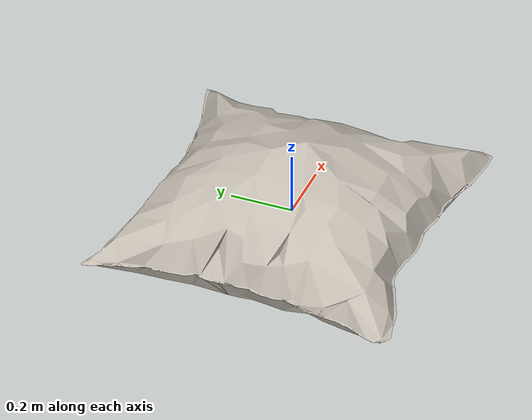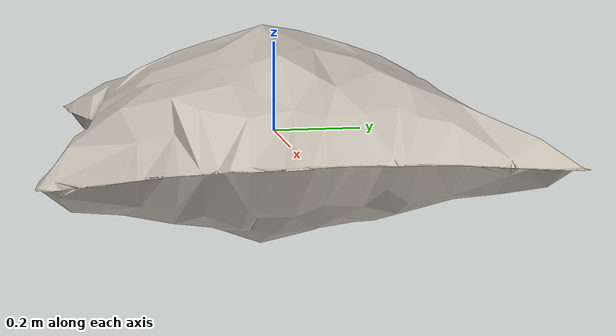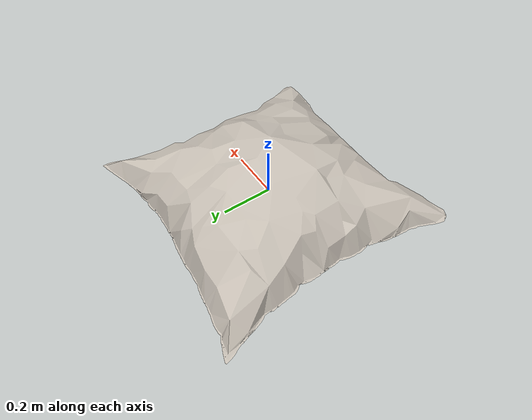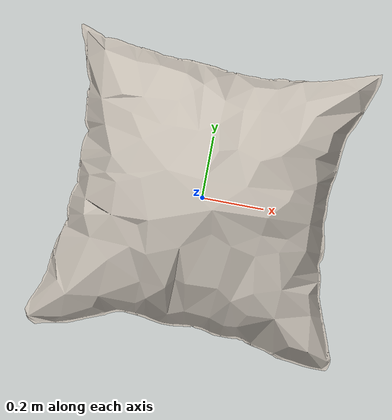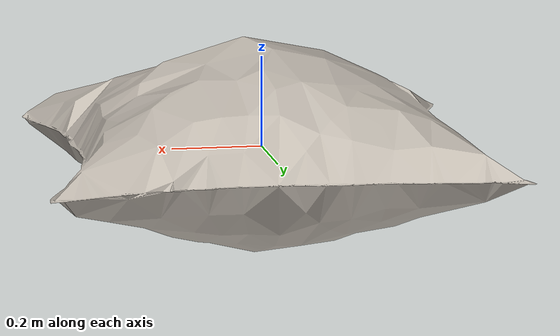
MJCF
<mujoco model="floor_cushion">
  <asset>
  <texture file="visual/ceramic.png" name="tex-floor_cushion" type="2d" />
  <material name="floor_cushion" reflectance="0.5" texrepeat="1 1" texture="tex-floor_cushion" texuniform="false" />
  <mesh file="visual/model_normalized_0.obj" name="model_normalized_0_vis" scale="1.0 1.0 1.0" /><mesh file="collision/model_normalized_collision_22.obj" name="model_normalized_collision_22._coll" scale="1.0 1.0 1.0" /><mesh file="collision/model_normalized_collision_4.obj" name="model_normalized_collision_4._coll" scale="1.0 1.0 1.0" /><mesh file="collision/model_normalized_collision_27.obj" name="model_normalized_collision_27._coll" scale="1.0 1.0 1.0" /><mesh file="collision/model_normalized_collision_6.obj" name="model_normalized_collision_6._coll" scale="1.0 1.0 1.0" /><mesh file="collision/model_normalized_collision_25.obj" name="model_normalized_collision_25._coll" scale="1.0 1.0 1.0" /><mesh file="collision/model_normalized_collision_26.obj" name="model_normalized_collision_26._coll" scale="1.0 1.0 1.0" /><mesh file="collision/model_normalized_collision_29.obj" name="model_normalized_collision_29._coll" scale="1.0 1.0 1.0" /><mesh file="collision/model_normalized_collision_19.obj" name="model_normalized_collision_19._coll" scale="1.0 1.0 1.0" /><mesh file="collision/model_normalized_collision_12.obj" name="model_normalized_collision_12._coll" scale="1.0 1.0 1.0" /><mesh file="collision/model_normalized_collision_17.obj" name="model_normalized_collision_17._coll" scale="1.0 1.0 1.0" /><mesh file="collision/model_normalized_collision_20.obj" name="model_normalized_collision_20._coll" scale="1.0 1.0 1.0" /><mesh file="collision/model_normalized_collision_14.obj" name="model_normalized_collision_14._coll" scale="1.0 1.0 1.0" /><mesh file="collision/model_normalized_collision_18.obj" name="model_normalized_collision_18._coll" scale="1.0 1.0 1.0" /><mesh file="collision/model_normalized_collision_15.obj" name="model_normalized_collision_15._coll" scale="1.0 1.0 1.0" /><mesh file="collision/model_normalized_collision_30.obj" name="model_normalized_collision_30._coll" scale="1.0 1.0 1.0" /><mesh file="collision/model_normalized_collision_31.obj" name="model_normalized_collision_31._coll" scale="1.0 1.0 1.0" /><mesh file="collision/model_normalized_collision_23.obj" name="model_normalized_collision_23._coll" scale="1.0 1.0 1.0" /><mesh file="collision/model_normalized_collision_28.obj" name="model_normalized_collision_28._coll" scale="1.0 1.0 1.0" /><mesh file="collision/model_normalized_collision_13.obj" name="model_normalized_collision_13._coll" scale="1.0 1.0 1.0" /><mesh file="collision/model_normalized_collision_5.obj" name="model_normalized_collision_5._coll" scale="1.0 1.0 1.0" /><mesh file="collision/model_normalized_collision_24.obj" name="model_normalized_collision_24._coll" scale="1.0 1.0 1.0" /><mesh file="collision/model_normalized_collision_16.obj" name="model_normalized_collision_16._coll" scale="1.0 1.0 1.0" /><mesh file="collision/model_normalized_collision_11.obj" name="model_normalized_collision_11._coll" scale="1.0 1.0 1.0" /><mesh file="collision/model_normalized_collision_1.obj" name="model_normalized_collision_1._coll" scale="1.0 1.0 1.0" /><mesh file="collision/model_normalized_collision_10.obj" name="model_normalized_collision_10._coll" scale="1.0 1.0 1.0" /><mesh file="collision/model_normalized_collision_21.obj" name="model_normalized_collision_21._coll" scale="1.0 1.0 1.0" /><mesh file="collision/model_normalized_collision_8.obj" name="model_normalized_collision_8._coll" scale="1.0 1.0 1.0" /><mesh file="collision/model_normalized_collision_7.obj" name="model_normalized_collision_7._coll" scale="1.0 1.0 1.0" /><mesh file="collision/model_normalized_collision_3.obj" name="model_normalized_collision_3._coll" scale="1.0 1.0 1.0" /><mesh file="collision/model_normalized_collision_2.obj" name="model_normalized_collision_2._coll" scale="1.0 1.0 1.0" /><mesh file="collision/model_normalized_collision_9.obj" name="model_normalized_collision_9._coll" scale="1.0 1.0 1.0" /><mesh file="collision/model_normalized_collision_0.obj" name="model_normalized_collision_0._coll" scale="1.0 1.0 1.0" /><texture type="2d" name="ID3_001" file="visual/ID3_001.png" /><material name="ID3_001" texture="ID3_001" specular="0.4000000000000001" shininess="0.001" /></asset>
  <worldbody>
    <body>
      <body name="object">
      <geom solimp="0.998 0.998 0.001" solref="0.001 1" density="100" friction="0.95 0.3 0.1" type="mesh" mesh="model_normalized_0_vis" conaffinity="0" contype="0" group="1" material="ID3_001" /><geom solimp="0.998 0.998 0.001" solref="0.001 1" density="100" friction="0.95 0.3 0.1" type="mesh" mesh="model_normalized_collision_22._coll" group="0" rgba="0.8 0.8 0.8 0.0" /><geom solimp="0.998 0.998 0.001" solref="0.001 1" density="100" friction="0.95 0.3 0.1" type="mesh" mesh="model_normalized_collision_4._coll" group="0" rgba="0.8 0.8 0.8 0.0" /><geom solimp="0.998 0.998 0.001" solref="0.001 1" density="100" friction="0.95 0.3 0.1" type="mesh" mesh="model_normalized_collision_27._coll" group="0" rgba="0.8 0.8 0.8 0.0" /><geom solimp="0.998 0.998 0.001" solref="0.001 1" density="100" friction="0.95 0.3 0.1" type="mesh" mesh="model_normalized_collision_6._coll" group="0" rgba="0.8 0.8 0.8 0.0" /><geom solimp="0.998 0.998 0.001" solref="0.001 1" density="100" friction="0.95 0.3 0.1" type="mesh" mesh="model_normalized_collision_25._coll" group="0" rgba="0.8 0.8 0.8 0.0" /><geom solimp="0.998 0.998 0.001" solref="0.001 1" density="100" friction="0.95 0.3 0.1" type="mesh" mesh="model_normalized_collision_26._coll" group="0" rgba="0.8 0.8 0.8 0.0" /><geom solimp="0.998 0.998 0.001" solref="0.001 1" density="100" friction="0.95 0.3 0.1" type="mesh" mesh="model_normalized_collision_29._coll" group="0" rgba="0.8 0.8 0.8 0.0" /><geom solimp="0.998 0.998 0.001" solref="0.001 1" density="100" friction="0.95 0.3 0.1" type="mesh" mesh="model_normalized_collision_19._coll" group="0" rgba="0.8 0.8 0.8 0.0" /><geom solimp="0.998 0.998 0.001" solref="0.001 1" density="100" friction="0.95 0.3 0.1" type="mesh" mesh="model_normalized_collision_12._coll" group="0" rgba="0.8 0.8 0.8 0.0" /><geom solimp="0.998 0.998 0.001" solref="0.001 1" density="100" friction="0.95 0.3 0.1" type="mesh" mesh="model_normalized_collision_17._coll" group="0" rgba="0.8 0.8 0.8 0.0" /><geom solimp="0.998 0.998 0.001" solref="0.001 1" density="100" friction="0.95 0.3 0.1" type="mesh" mesh="model_normalized_collision_20._coll" group="0" rgba="0.8 0.8 0.8 0.0" /><geom solimp="0.998 0.998 0.001" solref="0.001 1" density="100" friction="0.95 0.3 0.1" type="mesh" mesh="model_normalized_collision_14._coll" group="0" rgba="0.8 0.8 0.8 0.0" /><geom solimp="0.998 0.998 0.001" solref="0.001 1" density="100" friction="0.95 0.3 0.1" type="mesh" mesh="model_normalized_collision_18._coll" group="0" rgba="0.8 0.8 0.8 0.0" /><geom solimp="0.998 0.998 0.001" solref="0.001 1" density="100" friction="0.95 0.3 0.1" type="mesh" mesh="model_normalized_collision_15._coll" group="0" rgba="0.8 0.8 0.8 0.0" /><geom solimp="0.998 0.998 0.001" solref="0.001 1" density="100" friction="0.95 0.3 0.1" type="mesh" mesh="model_normalized_collision_30._coll" group="0" rgba="0.8 0.8 0.8 0.0" /><geom solimp="0.998 0.998 0.001" solref="0.001 1" density="100" friction="0.95 0.3 0.1" type="mesh" mesh="model_normalized_collision_31._coll" group="0" rgba="0.8 0.8 0.8 0.0" /><geom solimp="0.998 0.998 0.001" solref="0.001 1" density="100" friction="0.95 0.3 0.1" type="mesh" mesh="model_normalized_collision_23._coll" group="0" rgba="0.8 0.8 0.8 0.0" /><geom solimp="0.998 0.998 0.001" solref="0.001 1" density="100" friction="0.95 0.3 0.1" type="mesh" mesh="model_normalized_collision_28._coll" group="0" rgba="0.8 0.8 0.8 0.0" /><geom solimp="0.998 0.998 0.001" solref="0.001 1" density="100" friction="0.95 0.3 0.1" type="mesh" mesh="model_normalized_collision_13._coll" group="0" rgba="0.8 0.8 0.8 0.0" /><geom solimp="0.998 0.998 0.001" solref="0.001 1" density="100" friction="0.95 0.3 0.1" type="mesh" mesh="model_normalized_collision_5._coll" group="0" rgba="0.8 0.8 0.8 0.0" /><geom solimp="0.998 0.998 0.001" solref="0.001 1" density="100" friction="0.95 0.3 0.1" type="mesh" mesh="model_normalized_collision_24._coll" group="0" rgba="0.8 0.8 0.8 0.0" /><geom solimp="0.998 0.998 0.001" solref="0.001 1" density="100" friction="0.95 0.3 0.1" type="mesh" mesh="model_normalized_collision_16._coll" group="0" rgba="0.8 0.8 0.8 0.0" /><geom solimp="0.998 0.998 0.001" solref="0.001 1" density="100" friction="0.95 0.3 0.1" type="mesh" mesh="model_normalized_collision_11._coll" group="0" rgba="0.8 0.8 0.8 0.0" /><geom solimp="0.998 0.998 0.001" solref="0.001 1" density="100" friction="0.95 0.3 0.1" type="mesh" mesh="model_normalized_collision_1._coll" group="0" rgba="0.8 0.8 0.8 0.0" /><geom solimp="0.998 0.998 0.001" solref="0.001 1" density="100" friction="0.95 0.3 0.1" type="mesh" mesh="model_normalized_collision_10._coll" group="0" rgba="0.8 0.8 0.8 0.0" /><geom solimp="0.998 0.998 0.001" solref="0.001 1" density="100" friction="0.95 0.3 0.1" type="mesh" mesh="model_normalized_collision_21._coll" group="0" rgba="0.8 0.8 0.8 0.0" /><geom solimp="0.998 0.998 0.001" solref="0.001 1" density="100" friction="0.95 0.3 0.1" type="mesh" mesh="model_normalized_collision_8._coll" group="0" rgba="0.8 0.8 0.8 0.0" /><geom solimp="0.998 0.998 0.001" solref="0.001 1" density="100" friction="0.95 0.3 0.1" type="mesh" mesh="model_normalized_collision_7._coll" group="0" rgba="0.8 0.8 0.8 0.0" /><geom solimp="0.998 0.998 0.001" solref="0.001 1" density="100" friction="0.95 0.3 0.1" type="mesh" mesh="model_normalized_collision_3._coll" group="0" rgba="0.8 0.8 0.8 0.0" /><geom solimp="0.998 0.998 0.001" solref="0.001 1" density="100" friction="0.95 0.3 0.1" type="mesh" mesh="model_normalized_collision_2._coll" group="0" rgba="0.8 0.8 0.8 0.0" /><geom solimp="0.998 0.998 0.001" solref="0.001 1" density="100" friction="0.95 0.3 0.1" type="mesh" mesh="model_normalized_collision_9._coll" group="0" rgba="0.8 0.8 0.8 0.0" /><geom solimp="0.998 0.998 0.001" solref="0.001 1" density="100" friction="0.95 0.3 0.1" type="mesh" mesh="model_normalized_collision_0._coll" group="0" rgba="0.8 0.8 0.8 0.0" /></body>
      <site rgba="0 0 0 0" size="0.005" pos="-3.538541681891161e-11 -0.0030806690465927655 -0.24756167751070496" name="bottom_site" />
      <site rgba="0 0 0 0" size="0.005" pos="-3.538541681891161e-11 -0.0030806690465927655 0.25243832247918485" name="top_site" />
      <site rgba="0 0 0 0" size="0.005" pos="0.5075757575330193 0.49691933094835217 0.0024383224842399465" name="horizontal_radius_site" />
    </body>
  </worldbody>
</mujoco>
